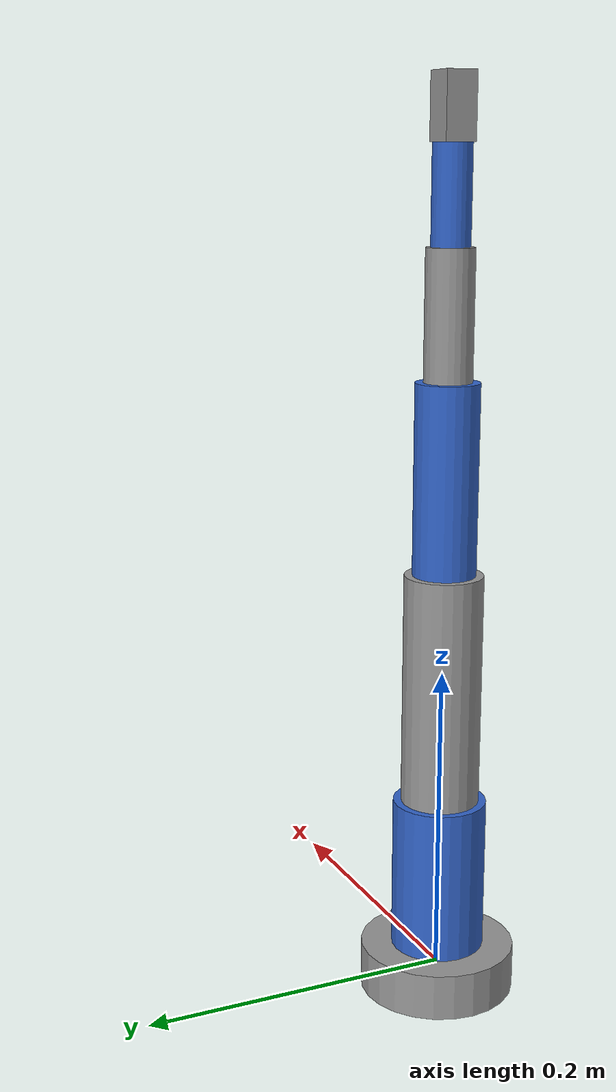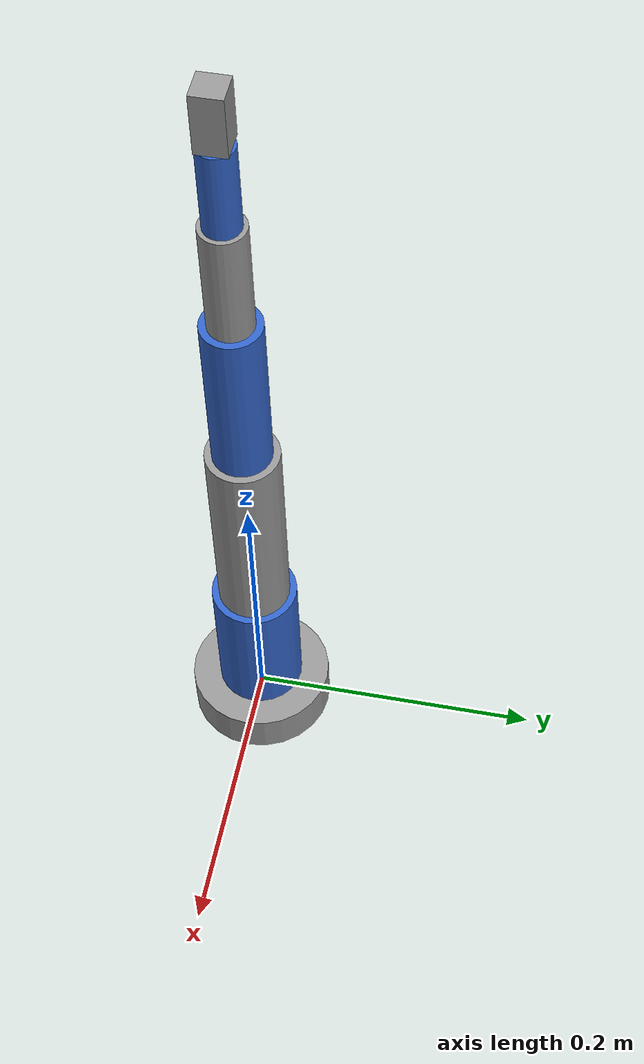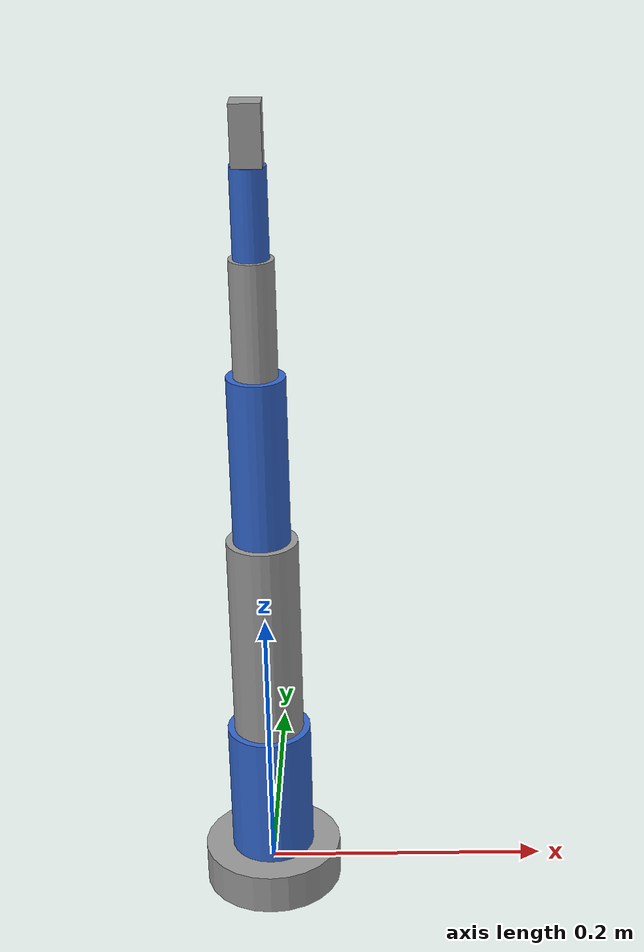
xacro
<?xml version="1.0"?>
<robot xmlns:xacro="http://www.ros.org/wiki/xacro" name="arm">
    <xacro:arg name="initial_positions_file" default="initial_positions.yaml" />

    <!-- Import arm urdf file -->
    <xacro:include filename="$(find arm_description)/urdf/arm.urdf.xacro" />

    <!-- Import control_xacro -->
    <xacro:include filename="arm.ros2_control.xacro" />

    <xacro:arm_ros2_control name="FakeSystem" initial_positions_file="$(arg initial_positions_file)"/>

</robot>

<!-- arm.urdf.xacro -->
<robot name="arm" xmlns:xacro="http://www.ros.org/wiki/xacro">

  <material name="grey"><color rgba="0.6 0.6 0.6 1"/></material>
  <material name="blue"><color rgba="0.2 0.4 0.8 1"/></material>

  <link name="base_link">
    <visual>
      <geometry><cylinder radius="0.05" length="0.03"/></geometry>
      <material name="grey"/>
    </visual>
    <collision>
      <geometry><cylinder radius="0.05" length="0.03"/></geometry>
    </collision>
  </link>

  <!-- Joint 1: Base rotation -->
  <link name="link1">
    <visual><origin xyz="0 0 0.05"/><geometry><cylinder radius="0.03" length="0.10"/></geometry><material name="blue"/></visual>
    <collision><origin xyz="0 0 0.05"/><geometry><cylinder radius="0.03" length="0.10"/></geometry></collision>
  </link>
  <joint name="base_to_link1" type="revolute">
    <parent link="base_link"/><child link="link1"/>
    <origin xyz="0 0 0.015" rpy="0 0 0"/>
    <axis xyz="0 0 1"/>
    <limit lower="-1.5708" upper="1.5708" effort="10" velocity="1.0"/>
  </joint>

  <!-- Joint 2: Shoulder -->
  <link name="link2">
    <visual><origin xyz="0 0 0.075"/><geometry><cylinder radius="0.025" length="0.15"/></geometry><material name="grey"/></visual>
    <collision><origin xyz="0 0 0.075"/><geometry><cylinder radius="0.025" length="0.15"/></geometry></collision>
  </link>
  <joint name="link1_to_link2" type="revolute">
    <parent link="link1"/><child link="link2"/>
    <origin xyz="0 0 0.10" rpy="0 0 0"/>
    <axis xyz="0 1 0"/>
    <limit lower="-1.5708" upper="1.5708" effort="10" velocity="1.0"/>
  </joint>

  <!-- Joint 3: Elbow -->
  <link name="link3">
    <visual><origin xyz="0 0 0.06"/><geometry><cylinder radius="0.02" length="0.12"/></geometry><material name="blue"/></visual>
    <collision><origin xyz="0 0 0.06"/><geometry><cylinder radius="0.02" length="0.12"/></geometry></collision>
  </link>
  <joint name="link2_to_link3" type="revolute">
    <parent link="link2"/><child link="link3"/>
    <origin xyz="0 0 0.15" rpy="0 0 0"/>
    <axis xyz="0 1 0"/>
    <limit lower="-1.5708" upper="1.5708" effort="10" velocity="1.0"/>
  </joint>

  <!-- Joint 4: Wrist Pitch -->
  <link name="link4">
    <visual><origin xyz="0 0 0.04"/><geometry><cylinder radius="0.015" length="0.08"/></geometry><material name="grey"/></visual>
    <collision><origin xyz="0 0 0.04"/><geometry><cylinder radius="0.015" length="0.08"/></geometry></collision>
  </link>
  <joint name="link3_to_link4" type="revolute">
    <parent link="link3"/><child link="link4"/>
    <origin xyz="0 0 0.12" rpy="0 0 0"/>
    <axis xyz="0 1 0"/>
    <limit lower="-1.5708" upper="1.5708" effort="5" velocity="1.0"/>
  </joint>

  <!-- Joint 5: Wrist Roll -->
  <link name="link5">
    <visual><origin xyz="0 0 0.03"/><geometry><cylinder radius="0.012" length="0.06"/></geometry><material name="blue"/></visual>
    <collision><origin xyz="0 0 0.03"/><geometry><cylinder radius="0.012" length="0.06"/></geometry></collision>
  </link>
  <joint name="link4_to_link5" type="revolute">
    <parent link="link4"/><child link="link5"/>
    <origin xyz="0 0 0.08" rpy="0 0 0"/>
    <axis xyz="0 0 1"/>
    <limit lower="-1.5708" upper="1.5708" effort="5" velocity="1.0"/>
  </joint>

  <!-- Joint 6: Gripper -->
  <link name="gripper_link">
    <visual><origin xyz="0 0 0.02"/><geometry><box size="0.02 0.02 0.04"/></geometry><material name="grey"/></visual>
    <collision><origin xyz="0 0 0.02"/><geometry><box size="0.02 0.02 0.04"/></geometry></collision>
  </link>
  <joint name="link5_to_gripper" type="revolute">
    <parent link="link5"/><child link="gripper_link"/>
    <origin xyz="0 0 0.06" rpy="0 0 0"/>
    <axis xyz="1 0 0"/>
    <limit lower="0" upper="1.0" effort="5" velocity="1.0"/>
  </joint>

</robot>
